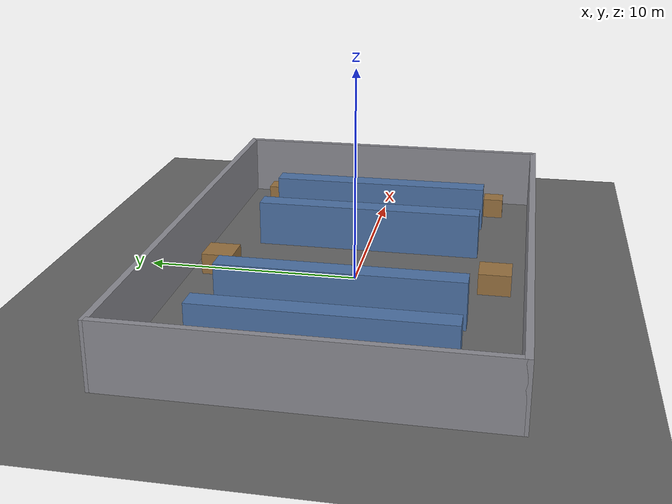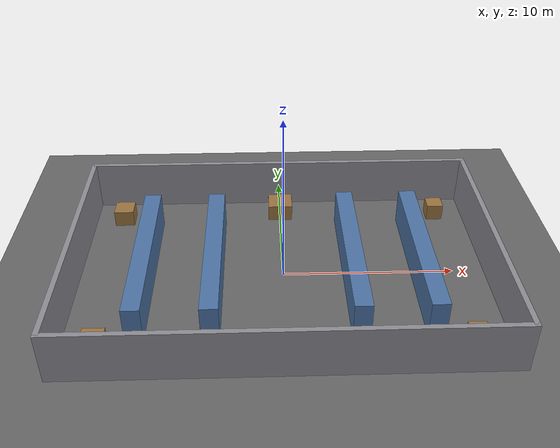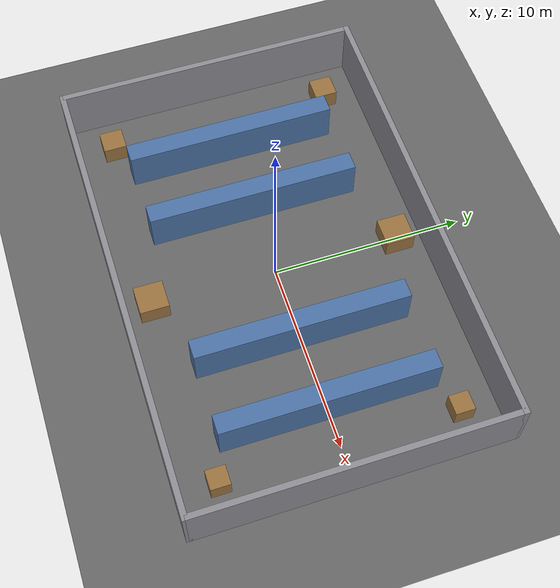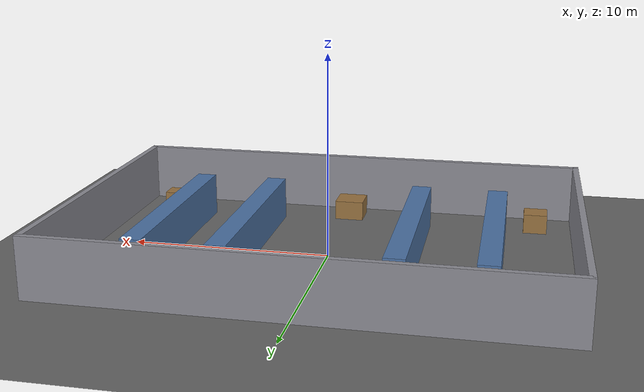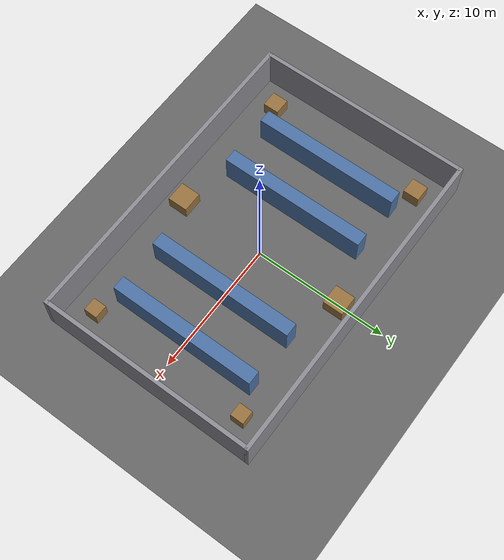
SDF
<?xml version="1.0"?>
<sdf version="1.8">
  <world name="industrial">
    <plugin filename="gz-sim-physics-system" name="gz::sim::systems::Physics"/>
    <plugin filename="gz-sim-sensors-system" name="gz::sim::systems::Sensors"><render_engine>ogre2</render_engine></plugin>
    <plugin filename="gz-sim-scene-broadcaster-system" name="gz::sim::systems::SceneBroadcaster"/>
    <plugin filename="gz-sim-user-commands-system" name="gz::sim::systems::UserCommands"/>
    <scene><ambient>0.5 0.5 0.5 1</ambient><background>0.7 0.7 0.75 1</background></scene>
    <light type="directional" name="sun"><cast_shadows>true</cast_shadows><pose>0 0 12 0 0 0</pose>
      <diffuse>0.9 0.9 0.9 1</diffuse><specular>0.2 0.2 0.2 1</specular><direction>-0.4 0.3 -0.9</direction></light>
    <model name="ground"><static>true</static><link name="l">
      <collision name="c"><geometry><plane><normal>0 0 1</normal><size>60 60</size></plane></geometry></collision>
      <visual name="v"><geometry><plane><normal>0 0 1</normal><size>60 60</size></plane></geometry>
        <material><ambient>0.35 0.35 0.35 1</ambient><diffuse>0.4 0.4 0.4 1</diffuse></material></visual>
    </link></model>
    <model name="warehouse"><static>true</static>
      <link name="b0">
        <pose>0.000 -8.000 1.500 0 0 0</pose>
        <collision name="c"><geometry><box><size>24.300 0.300 3.000</size></box></geometry></collision>
        <visual name="v"><geometry><box><size>24.300 0.300 3.000</size></box></geometry>
          <material><ambient>0.55 0.55 0.58 1</ambient><diffuse>0.55 0.55 0.58 1</diffuse></material></visual>
      </link>
      <link name="b1">
        <pose>0.000 8.000 1.500 0 0 0</pose>
        <collision name="c"><geometry><box><size>24.300 0.300 3.000</size></box></geometry></collision>
        <visual name="v"><geometry><box><size>24.300 0.300 3.000</size></box></geometry>
          <material><ambient>0.55 0.55 0.58 1</ambient><diffuse>0.55 0.55 0.58 1</diffuse></material></visual>
      </link>
      <link name="b2">
        <pose>-12.000 0.000 1.500 0 0 0</pose>
        <collision name="c"><geometry><box><size>0.300 16.000 3.000</size></box></geometry></collision>
        <visual name="v"><geometry><box><size>0.300 16.000 3.000</size></box></geometry>
          <material><ambient>0.55 0.55 0.58 1</ambient><diffuse>0.55 0.55 0.58 1</diffuse></material></visual>
      </link>
      <link name="b3">
        <pose>12.000 0.000 1.500 0 0 0</pose>
        <collision name="c"><geometry><box><size>0.300 16.000 3.000</size></box></geometry></collision>
        <visual name="v"><geometry><box><size>0.300 16.000 3.000</size></box></geometry>
          <material><ambient>0.55 0.55 0.58 1</ambient><diffuse>0.55 0.55 0.58 1</diffuse></material></visual>
      </link>
      <link name="b4">
        <pose>-8.000 0.000 1.100 0 0 0</pose>
        <collision name="c"><geometry><box><size>1.000 11.000 2.200</size></box></geometry></collision>
        <visual name="v"><geometry><box><size>1.000 11.000 2.200</size></box></geometry>
          <material><ambient>0.30 0.45 0.65 1</ambient><diffuse>0.30 0.45 0.65 1</diffuse></material></visual>
      </link>
      <link name="b5">
        <pose>-4.000 0.000 1.100 0 0 0</pose>
        <collision name="c"><geometry><box><size>1.000 11.000 2.200</size></box></geometry></collision>
        <visual name="v"><geometry><box><size>1.000 11.000 2.200</size></box></geometry>
          <material><ambient>0.30 0.45 0.65 1</ambient><diffuse>0.30 0.45 0.65 1</diffuse></material></visual>
      </link>
      <link name="b6">
        <pose>4.000 0.000 1.100 0 0 0</pose>
        <collision name="c"><geometry><box><size>1.000 11.000 2.200</size></box></geometry></collision>
        <visual name="v"><geometry><box><size>1.000 11.000 2.200</size></box></geometry>
          <material><ambient>0.30 0.45 0.65 1</ambient><diffuse>0.30 0.45 0.65 1</diffuse></material></visual>
      </link>
      <link name="b7">
        <pose>8.000 0.000 1.100 0 0 0</pose>
        <collision name="c"><geometry><box><size>1.000 11.000 2.200</size></box></geometry></collision>
        <visual name="v"><geometry><box><size>1.000 11.000 2.200</size></box></geometry>
          <material><ambient>0.30 0.45 0.65 1</ambient><diffuse>0.30 0.45 0.65 1</diffuse></material></visual>
      </link>
      <link name="b8">
        <pose>10.000 -6.000 0.500 0 0 0</pose>
        <collision name="c"><geometry><box><size>1.000 1.000 1.000</size></box></geometry></collision>
        <visual name="v"><geometry><box><size>1.000 1.000 1.000</size></box></geometry>
          <material><ambient>0.6 0.45 0.25 1</ambient><diffuse>0.6 0.45 0.25 1</diffuse></material></visual>
      </link>
      <link name="b9">
        <pose>10.000 6.000 0.500 0 0 0</pose>
        <collision name="c"><geometry><box><size>1.000 1.000 1.000</size></box></geometry></collision>
        <visual name="v"><geometry><box><size>1.000 1.000 1.000</size></box></geometry>
          <material><ambient>0.6 0.45 0.25 1</ambient><diffuse>0.6 0.45 0.25 1</diffuse></material></visual>
      </link>
      <link name="b10">
        <pose>-10.000 6.000 0.500 0 0 0</pose>
        <collision name="c"><geometry><box><size>1.200 1.200 1.000</size></box></geometry></collision>
        <visual name="v"><geometry><box><size>1.200 1.200 1.000</size></box></geometry>
          <material><ambient>0.6 0.45 0.25 1</ambient><diffuse>0.6 0.45 0.25 1</diffuse></material></visual>
      </link>
      <link name="b11">
        <pose>-10.000 -6.000 0.500 0 0 0</pose>
        <collision name="c"><geometry><box><size>1.200 1.200 1.000</size></box></geometry></collision>
        <visual name="v"><geometry><box><size>1.200 1.200 1.000</size></box></geometry>
          <material><ambient>0.6 0.45 0.25 1</ambient><diffuse>0.6 0.45 0.25 1</diffuse></material></visual>
      </link>
      <link name="b12">
        <pose>0.000 6.500 0.500 0 0 0</pose>
        <collision name="c"><geometry><box><size>1.500 1.500 1.000</size></box></geometry></collision>
        <visual name="v"><geometry><box><size>1.500 1.500 1.000</size></box></geometry>
          <material><ambient>0.6 0.45 0.25 1</ambient><diffuse>0.6 0.45 0.25 1</diffuse></material></visual>
      </link>
      <link name="b13">
        <pose>0.000 -6.500 0.500 0 0 0</pose>
        <collision name="c"><geometry><box><size>1.500 1.500 1.000</size></box></geometry></collision>
        <visual name="v"><geometry><box><size>1.500 1.500 1.000</size></box></geometry>
          <material><ambient>0.6 0.45 0.25 1</ambient><diffuse>0.6 0.45 0.25 1</diffuse></material></visual>
      </link>
    </model>
  </world>
</sdf>
